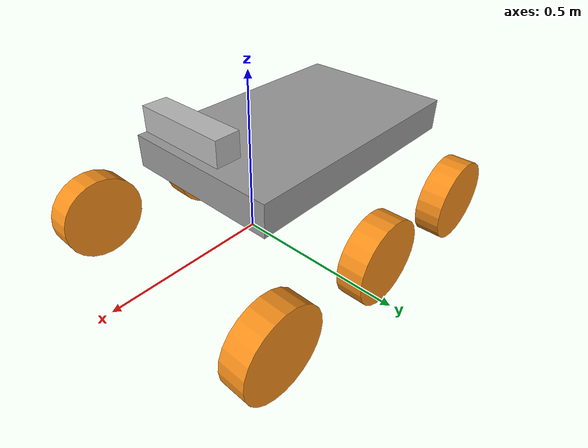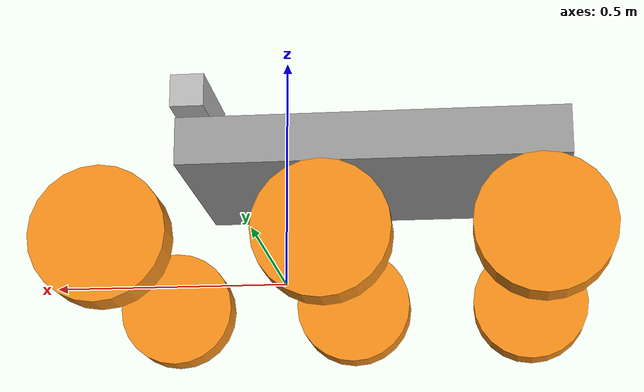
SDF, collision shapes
<?xml version='1.0'?>
<sdf version='1.6'>
  <model name='wombat'>
    <model name='cart_front_steer'>
      <link name='chassis'>
        <pose frame=''>0 0 0.45 0 0 0</pose>
        <inertial>
          <pose frame=''>0.1 0 0 0 0 0</pose>
          <mass>10</mass>
          <inertia>
            <ixx>0.216667</ixx>
            <iyy>0.841667</iyy>
            <izz>1.04167</izz>
            <ixy>0</ixy>
            <ixz>0</ixz>
            <iyz>0</iyz>
          </inertia>
        </inertial>
        <collision name='collision'>
          <geometry>
            <box>
              <size>0.8 0.5 0.1</size>
            </box>
          </geometry>
          <max_contacts>10</max_contacts>
          <surface>
            <contact>
              <ode/>
            </contact>
            <bounce/>
            <friction>
              <torsional>
                <ode/>
              </torsional>
              <ode/>
            </friction>
          </surface>
        </collision>
        <visual name='visual'>
          <geometry>
            <mesh>
              <uri>model://wombat/meshes/wombat_chassis.dae</uri>
            </mesh>
          </geometry>
          <material>
            <script>
              <uri>file://media/materials/scripts/gazebo.material</uri>
              <name>Gazebo/Grey</name>
            </script>
          </material>
        </visual>
        <self_collide>0</self_collide>
        <enable_wind>0</enable_wind>
        <kinematic>0</kinematic>
      </link>
      <link name="susp_front_right">
  +     <pose>0.51 -0.38   0.22  0 0 0</pose>
  +     <inertial>
  +       <mass>0.5</mass>
  +       <inertia>
  +         <ixx>0.000208333333333333</ixx>
  +         <iyy>0.000208333333333333</iyy>
  +         <izz>0.000208333333333333</izz>
  +         <ixy>0</ixy>
  +         <ixz>0</ixz>
  +         <iyz>0</iyz>
  +       </inertia>
  +     </inertial>
  +     <collision name="collision">
  +       <geometry>
  +         <box>
  +           <size>0.05 0.05 0.05</size>
  +         </box>
  +       </geometry>
  +     </collision>
  +     <visual name="visual">
  +       <geometry>
  +         <box>
  +           <size>0.05 0.05 0.05</size>
  +         </box>
  +       </geometry>
  +       <material>
  +         <script>
  +           <uri>file://media/materials/scripts/gazebo.material</uri>
  +           <name>Gazebo/Orange</name>
  +         </script>
  +       </material>
  +     </visual>
  +   </link>
  +   <joint name="susp_front_right_prismatic" type="prismatic">
  +     <parent>chassis</parent>
  +     <child>susp_front_right</child>
  +     <axis>
  +       <xyz>0 0 -1</xyz>
  +       <limit>
  +         <lower>-0.3</lower>
  +         <upper>0.3</upper>
  +       </limit>
  +       <dynamics>
  +         <damping>100</damping>
  +         <spring_stiffness>500</spring_stiffness>
  +         <spring_reference>0.05</spring_reference>
  +       </dynamics>
  +     </axis>
  +     <physics>
  +       <ode>
  +         <implicit_spring_damper>1</implicit_spring_damper>
  +       </ode>
  +     </physics>
  +   </joint>
  +   <link name="wheel_front_right">
  +     <pose>0.51 -0.38  0.22  1.57079632679 0 0</pose>
  +     <inertial>
  +       <mass>0.5</mass>
  +       <inertia>
  +         <ixx>0.00307916666666667</ixx>
  +         <iyy>0.00307916666666667</iyy>
  +         <izz>0.005625</izz>
  +         <ixy>0</ixy>
  +         <ixz>0</ixz>
  +         <iyz>0</iyz>
  +       </inertia>
  +     </inertial>
  +     <collision name="collision">
  +       <geometry>
  +         <cylinder>
  +           <radius>0.133</radius>
  +           <length>0.08</length>
  +         </cylinder>
  +       </geometry>
+       </collision>
+       <visual name="visual">
+         <geometry>
            <mesh>
              <uri>model://wombat/meshes/wombat_wheel.dae</uri>
            </mesh>
+         </geometry>
+         <material>
+           <script>
+             <uri>file://media/materials/scripts/gazebo.material</uri>
+             <name>Gazebo/Orange</name>
+           </script>
+         </material>
+       </visual>
+     </link>
+     <joint name="wheel_front_right_steer_spin" type="revolute">
+       <parent>susp_front_right</parent>
+       <child>wheel_front_right</child>
+       <axis>
+         <xyz>0 0 -1</xyz>
+       </axis>
+     </joint>
+
+     <link name="susp_front_left">
+       <pose>0.51 0.38  0.22  0 0 0</pose>
+       <inertial>
+         <mass>0.5</mass>
+         <inertia>
+           <ixx>0.000208333333333333</ixx>
+           <iyy>0.000208333333333333</iyy>
+           <izz>0.000208333333333333</izz>
+           <ixy>0</ixy>
+           <ixz>0</ixz>
+           <iyz>0</iyz>
+         </inertia>
+       </inertial>
+       <collision name="collision">
+         <geometry>
+           <box>
+             <size>0.05 0.05 0.05</size>
+           </box>
+         </geometry>
+       </collision>
+       <visual name="visual">
+         <geometry>
+           <box>
+             <size>0.05 0.05 0.05</size>
+           </box>
+         </geometry>
+         <material>
+           <script>
+             <uri>file://media/materials/scripts/gazebo.material</uri>
+             <name>Gazebo/Orange</name>
+           </script>
+         </material>
+       </visual>
+     </link>
+     <joint name="susp_front_left_prismatic" type="prismatic">
+       <parent>chassis</parent>
+       <child>susp_front_left</child>
+       <axis>
+         <xyz>0 0 -1</xyz>
+         <limit>
+           <lower>-0.3</lower>
+           <upper>0.3</upper>
+         </limit>
+         <dynamics>
+           <damping>100</damping>
+           <spring_stiffness>500</spring_stiffness>
+           <spring_reference>0.05</spring_reference>
+         </dynamics>
+       </axis>
+       <physics>
+         <ode>
+           <implicit_spring_damper>1</implicit_spring_damper>
+         </ode>
+       </physics>
+     </joint>
+     <link name="wheel_front_left">
+       <pose>0.51 0.38  0.22  -1.5707963267949 0 0</pose>
+       <inertial>
+         <mass>0.5</mass>
+         <inertia>
+           <ixx>0.00307916666666667</ixx>
+           <iyy>0.00307916666666667</iyy>
+           <izz>0.005625</izz>
+           <ixy>0</ixy>
+           <ixz>0</ixz>
+           <iyz>0</iyz>
+         </inertia>
+       </inertial>
+       <collision name="collision">
+         <geometry>
  +         <cylinder>
  +           <radius>0.133</radius>
  +           <length>0.08</length>
  +         </cylinder>
+         </geometry>
+       </collision>
+       <visual name="visual">
+         <geometry>
            <mesh>
              <uri>model://wombat/meshes/wombat_wheel.dae</uri>
            </mesh>
+         </geometry>
+         <material>
+           <script>
+             <uri>file://media/materials/scripts/gazebo.material</uri>
+             <name>Gazebo/Orange</name>
+           </script>
+         </material>
+       </visual>
+     </link>
+     <joint name="wheel_front_left_steer_spin" type="revolute">
+       <parent>susp_front_left</parent>
+       <child>wheel_front_left</child>
+       <axis>
+         <xyz>0 0 1</xyz>
+       </axis>
+     </joint>
+
+     <link name="susp_rear_right">
+       <pose>-0.33 -0.38  0.22  0 0 0</pose>
+       <inertial>
+         <mass>0.5</mass>
+         <inertia>
+           <ixx>0.000208333333333333</ixx>
+           <iyy>0.000208333333333333</iyy>
+           <izz>0.000208333333333333</izz>
+           <ixy>0</ixy>
+           <ixz>0</ixz>
+           <iyz>0</iyz>
+         </inertia>
+       </inertial>
+       <collision name="collision">
+         <geometry>
+           <box>
+             <size>0.05 0.05 0.05</size>
+           </box>
+         </geometry>
+       </collision>
+       <visual name="visual">
+         <geometry>
+           <box>
+             <size>0.05 0.05 0.05</size>
+           </box>
+         </geometry>
+         <material>
+           <script>
+             <uri>file://media/materials/scripts/gazebo.material</uri>
+             <name>Gazebo/Orange</name>
+           </script>
+         </material>
+       </visual>
+     </link>
+     <joint name="susp_rear_right_prismatic" type="prismatic">
+       <parent>chassis</parent>
+       <child>susp_rear_right</child>
+       <axis>
+         <xyz>0 0 -1</xyz>
+         <limit>
+           <lower>-0.3</lower>
+           <upper>0.3</upper>
+         </limit>
+         <dynamics>
+           <damping>100</damping>
+           <spring_stiffness>500</spring_stiffness>
+           <spring_reference>0.05</spring_reference>
+         </dynamics>
+       </axis>
+       <physics>
+         <ode>
+           <implicit_spring_damper>1</implicit_spring_damper>
+         </ode>
+       </physics>
+     </joint>
+     <link name="wheel_rear_right">
+       <pose>-0.33 -0.38  0.22  1.5707963267949 0 0</pose>
+       <inertial>
+         <mass>0.5</mass>
+         <inertia>
+           <ixx>0.00307916666666667</ixx>
+           <iyy>0.00307916666666667</iyy>
+           <izz>0.005625</izz>
+           <ixy>0</ixy>
+           <ixz>0</ixz>
+           <iyz>0</iyz>
+         </inertia>
+       </inertial>
+       <collision name="collision">
+         <geometry>
  +         <cylinder>
  +           <radius>0.133</radius>
  +           <length>0.08</length>
  +         </cylinder>
+         </geometry>
+       </collision>
+       <visual name="visual">
+         <geometry>
            <mesh>
              <uri>model://wombat/meshes/wombat_wheel.dae</uri>
            </mesh>
+         </geometry>
+         <material>
+           <script>
+             <uri>file://media/materials/scripts/gazebo.material</uri>
+             <name>Gazebo/Orange</name>
+           </script>
+         </material>
+       </visual>
+     </link>
+     <joint name="wheel_rear_right_spin" type="revolute">
+       <parent>susp_rear_right</parent>
+       <child>wheel_rear_right</child>
+       <axis>
+         <xyz>0 0 -1</xyz>
+       </axis>
+     </joint>
+
+     <link name="susp_rear_left">
+       <pose>-0.33 0.38  0.22  0 0 0</pose>
+       <inertial>
+         <mass>0.5</mass>
+         <inertia>
+           <ixx>0.000208333333333333</ixx>
+           <iyy>0.000208333333333333</iyy>
+           <izz>0.000208333333333333</izz>
+           <ixy>0</ixy>
+           <ixz>0</ixz>
+           <iyz>0</iyz>
+         </inertia>
+       </inertial>
+       <collision name="collision">
+         <geometry>
+           <box>
+             <size>0.05 0.05 0.05</size>
+           </box>
+         </geometry>
+       </collision>
+       <visual name="visual">
+         <geometry>
+           <box>
+             <size>0.05 0.05 0.05</size>
+           </box>
+         </geometry>
+         <material>
+           <script>
+             <uri>file://media/materials/scripts/gazebo.material</uri>
+             <name>Gazebo/Orange</name>
+           </script>
+         </material>
+       </visual>
+     </link>
+     <joint name="susp_rear_left_prismatic" type="prismatic">
+       <parent>chassis</parent>
+       <child>susp_rear_left</child>
+       <axis>
+         <xyz>0 0 -1</xyz>
+         <limit>
+           <lower>-0.3</lower>
+           <upper>0.3</upper>
+         </limit>
+         <dynamics>
+           <damping>100</damping>
+           <spring_stiffness>500</spring_stiffness>
+           <spring_reference>0.05</spring_reference>
+         </dynamics>
+       </axis>
+       <physics>
+         <ode>
+           <implicit_spring_damper>1</implicit_spring_damper>
+         </ode>
+       </physics>
+     </joint>
+     <link name="wheel_rear_left">
+       <pose>-0.33 0.38  0.22  -1.5707963267949 0 0</pose>
+       <inertial>
+         <mass>0.5</mass>
+         <inertia>
+           <ixx>0.00307916666666667</ixx>
+           <iyy>0.00307916666666667</iyy>
+           <izz>0.005625</izz>
+           <ixy>0</ixy>
+           <ixz>0</ixz>
+           <iyz>0</iyz>
+         </inertia>
+       </inertial>
+       <collision name="collision">
+         <geometry>
  +         <cylinder>
  +           <radius>0.133</radius>
  +           <length>0.08</length>
  +         </cylinder>
+         </geometry>
+       </collision>
+       <visual name="visual">
+         <geometry>
            <mesh>
              <uri>model://wombat/meshes/wombat_wheel.dae</uri>
            </mesh>
+         </geometry>
+         <material>
+           <script>
+             <uri>file://media/materials/scripts/gazebo.material</uri>
+             <name>Gazebo/Orange</name>
+           </script>
+         </material>
+       </visual>
+     </link>
+     <joint name="wheel_rear_left_spin" type="revolute">
+       <parent>susp_rear_left</parent>
+       <child>wheel_rear_left</child>
+       <axis>
+         <xyz>0 0 1</xyz>
+       </axis>
+     </joint>

      <link name="susp_mid_right">
  +     <pose>0.085 -0.38  0.22  0 0 0</pose>
  +     <inertial>
  +       <mass>0.5</mass>
  +       <inertia>
  +         <ixx>0.000208333333333333</ixx>
  +         <iyy>0.000208333333333333</iyy>
  +         <izz>0.000208333333333333</izz>
  +         <ixy>0</ixy>
  +         <ixz>0</ixz>
  +         <iyz>0</iyz>
  +       </inertia>
  +     </inertial>
  +     <collision name="collision">
  +       <geometry>
  +         <box>
  +           <size>0.05 0.05 0.05</size>
  +         </box>
  +       </geometry>
  +     </collision>
  +     <visual name="visual">
  +       <geometry>
  +         <box>
  +           <size>0.05 0.05 0.05</size>
  +         </box>
  +       </geometry>
  +       <material>
  +         <script>
  +           <uri>file://media/materials/scripts/gazebo.material</uri>
  +           <name>Gazebo/Orange</name>
  +         </script>
  +       </material>
  +     </visual>
  +   </link>
  +   <joint name="susp_mid_right_prismatic" type="prismatic">
  +     <parent>chassis</parent>
  +     <child>susp_mid_right</child>
  +     <axis>
  +       <xyz>0 0 -1</xyz>
  +       <limit>
  +         <lower>-0.3</lower>
  +         <upper>0.3</upper>
  +       </limit>
  +       <dynamics>
  +         <damping>100</damping>
  +         <spring_stiffness>500</spring_stiffness>
  +         <spring_reference>0.05</spring_reference>
  +       </dynamics>
  +     </axis>
  +     <physics>
  +       <ode>
  +         <implicit_spring_damper>1</implicit_spring_damper>
  +       </ode>
  +     </physics>
  +   </joint>
  +   <link name="wheel_mid_right">
  +     <pose>0.085 -0.38  0.22  1.5707963267949 0 0</pose>
  +     <inertial>
  +       <mass>0.5</mass>
  +       <inertia>
  +         <ixx>0.00307916666666667</ixx>
  +         <iyy>0.00307916666666667</iyy>
  +         <izz>0.005625</izz>
  +         <ixy>0</ixy>
  +         <ixz>0</ixz>
  +         <iyz>0</iyz>
  +       </inertia>
  +     </inertial>
  +     <collision name="collision">
  +       <geometry>
  +         <cylinder>
  +           <radius>0.133</radius>
  +           <length>0.08</length>
  +         </cylinder>
  +       </geometry>
+       </collision>
+       <visual name="visual">
+         <geometry>
            <mesh>
              <uri>model://wombat/meshes/wombat_wheel.dae</uri>
            </mesh>
+         </geometry>
+         <material>
+           <script>
+             <uri>file://media/materials/scripts/gazebo.material</uri>
+             <name>Gazebo/Orange</name>
+           </script>
+         </material>
+       </visual>
+     </link>
+     <joint name="wheel_mid_right_spin" type="revolute">
+       <parent>susp_mid_right</parent>
+       <child>wheel_mid_right</child>
+       <axis>
+         <xyz>0 0 -1</xyz>
+       </axis>
+     </joint>

      <link name="susp_mid_left">
  +     <pose>0.085 0.38  0.22  0 0 0</pose>
  +     <inertial>
  +       <mass>0.5</mass>
  +       <inertia>
  +         <ixx>0.000208333333333333</ixx>
  +         <iyy>0.000208333333333333</iyy>
  +         <izz>0.000208333333333333</izz>
  +         <ixy>0</ixy>
  +         <ixz>0</ixz>
  +         <iyz>0</iyz>
  +       </inertia>
  +     </inertial>
  +     <collision name="collision">
  +       <geometry>
  +         <box>
  +           <size>0.05 0.05 0.05</size>
  +         </box>
  +       </geometry>
  +     </collision>
  +     <visual name="visual">
  +       <geometry>
  +         <box>
  +           <size>0.05 0.05 0.05</size>
  +         </box>
  +       </geometry>
  +       <material>
  +         <script>
  +           <uri>file://media/materials/scripts/gazebo.material</uri>
  +           <name>Gazebo/Orange</name>
  +         </script>
  +       </material>
  +     </visual>
  +   </link>
  +   <joint name="susp_mid_left_prismatic" type="prismatic">
  +     <parent>chassis</parent>
  +     <child>susp_mid_left</child>
  +     <axis>
  +       <xyz>0 0 -1</xyz>
  +       <limit>
  +         <lower>-0.3</lower>
  +         <upper>0.3</upper>
  +       </limit>
  +       <dynamics>
  +         <damping>100</damping>
  +         <spring_stiffness>500</spring_stiffness>
  +         <spring_reference>0.05</spring_reference>
  +       </dynamics>
  +     </axis>
  +     <physics>
  +       <ode>
  +         <implicit_spring_damper>1</implicit_spring_damper>
  +       </ode>
  +     </physics>
  +   </joint>
  +   <link name="wheel_mid_left">
  +     <pose>0.085 0.38   0.22  -1.5707963267949 0 0</pose>
  +     <inertial>
  +       <mass>0.5</mass>
  +       <inertia>
  +         <ixx>0.00307916666666667</ixx>
  +         <iyy>0.00307916666666667</iyy>
  +         <izz>0.005625</izz>
  +         <ixy>0</ixy>
  +         <ixz>0</ixz>
  +         <iyz>0</iyz>
  +       </inertia>
  +     </inertial>
  +     <collision name="collision">
  +       <geometry>
  +         <cylinder>
  +           <radius>0.133</radius>
  +           <length>0.08</length>
  +         </cylinder>
  +       </geometry>
+       </collision>
+       <visual name="visual">
+         <geometry>
            <mesh>
              <uri>model://wombat/meshes/wombat_wheel.dae</uri>
            </mesh>
+         </geometry>
+         <material>
+           <script>
+             <uri>file://media/materials/scripts/gazebo.material</uri>
+             <name>Gazebo/Orange</name>
+           </script>
+         </material>
+       </visual>
+     </link>
+     <joint name="wheel_mid_left_spin" type="revolute">
+       <parent>susp_mid_left</parent>
+       <child>wheel_mid_left</child>
+       <axis>
+         <xyz>0 0 1</xyz>
+       </axis>
+     </joint>

      <pose frame=''>-0.2 0 -0.2 -0 -0 -0</pose>
      <plugin name="skid_steer_drive_controller_custom" filename="libgazebo_ros_skid_steer_drive_custom.so">
        <updateRate>0.0</updateRate>
        <robotNamespace>/</robotNamespace>
        <leftFrontJoint>wheel_front_left_steer_spin</leftFrontJoint>
        <rightFrontJoint>wheel_front_right_steer_spin</rightFrontJoint>
        <leftRearJoint>wheel_rear_left_spin</leftRearJoint>
        <rightRearJoint>wheel_rear_right_spin</rightRearJoint>
        <leftMidJoint>wheel_mid_left_spin</leftMidJoint>
        <rightMidJoint>wheel_mid_right_spin</rightMidJoint>
        <wheelSeparation>0.8</wheelSeparation>
        <wheelDiameter>0.27</wheelDiameter>
        <robotBaseFrame>base_footprint</robotBaseFrame>
        <torque>10</torque>
        <commandTopic>cmd_vel</commandTopic>
        <odometryTopic>odom</odometryTopic>
        <odometryFrame>odom</odometryFrame>
        <covariance_x>0.000100</covariance_x>
        <covariance_y>0.000100</covariance_y>
        <covariance_yaw>0.000100</covariance_yaw>
        <broadcastTF>1</broadcastTF>
      </plugin>
    </model>
    <model name='kinect'>
    <plugin name="name_gps" filename="libhector_gazebo_ros_gps.so">
      <alwayson>1</alwayson>
      <updaterate>10.0</updaterate>
      <bodyname>gps_link</bodyname>
      <gaussianNoise>0.3 0.3 0.3</gaussianNoise>
      <topicname>fix</topicname>
      <velocitytopicname>fixvelocity</velocitytopicname>
      <drift>0.0 0.0 0.0</drift>
      <velocitydrift>0 0 0</velocitydrift>
      <velocitygaussiannoise>1 1 1</velocitygaussiannoise>
    </plugin>
      <pose frame=''>0.2 0 0.4 0 0 0</pose>
      <link name='camera_link'>
        <inertial>
          <mass>0.1</mass>
          <pose frame=''>0 0 0 0 0 0</pose>
          <inertia>
            <ixx>1</ixx>
            <ixy>0</ixy>
            <ixz>0</ixz>
            <iyy>1</iyy>
            <iyz>0</iyz>
            <izz>1</izz>
          </inertia>
        </inertial>
        <collision name='collision'>
          <geometry>
            <box>
              <size>0.073 0.276 0.072</size>
            </box>
          </geometry>
          <max_contacts>10</max_contacts>
          <surface>
            <contact>
              <ode/>
            </contact>
            <bounce/>
            <friction>
              <torsional>
                <ode/>
              </torsional>
              <ode/>
            </friction>
          </surface>
        </collision>
        <visual name='visual'>
          <geometry>
            <mesh>
              <uri>model://kinect/meshes/kinect.dae</uri>
            </mesh>
          </geometry>
        </visual>
        <gravity>1</gravity>
        <sensor name='imu_sensor' type='imu'>
          <always_on>1</always_on>
          <update_rate>100</update_rate>
          <visualize>1</visualize>
          <topic>__default_topic__</topic>
          <plugin name='imu_plugin' filename='libgazebo_ros_imu_sensor.so'>
            <topicName>imu</topicName>
            <bodyName>imu_link</bodyName>
            <updateRateHZ>10.0</updateRateHZ>
            <gaussianNoise>0.0</gaussianNoise>
            <xyzOffset>0 0 0</xyzOffset>
            <rpyOffset>0 0 0</rpyOffset>
            <frameName>imu_link</frameName>
          </plugin>
          <pose frame=''>0 0 0 0 -0 0</pose>
          <imu/>
        </sensor>

        <sensor name='camera' type='depth'>
          <plugin name='camera_plugin' filename='libgazebo_ros_openni_kinect.so'>
            <baseline>0.2</baseline>
            <alwaysOn>1</alwaysOn>
            <updateRate>0.0</updateRate>
            <cameraName>camera_ir</cameraName>
            <imageTopicName>/camera/color/image_raw</imageTopicName>
            <cameraInfoTopicName>/camera/color/camera_info</cameraInfoTopicName>
            <depthImageTopicName>/camera/depth/image_raw</depthImageTopicName>
            <depthImageCameraInfoTopicName>/camera/depth/camera_info</depthImageCameraInfoTopicName>
            <pointCloudTopicName>/camera/depth/points</pointCloudTopicName>
            <frameName>camera_link</frameName>
            <pointCloudCutoff>0.5</pointCloudCutoff>
            <pointCloudCutoffMax>5.0</pointCloudCutoffMax>
            <distortionK1>0.1</distortionK1>
            <distortionK2>0.1</distortionK2>
            <distortionK3>0.1</distortionK3>
            <distortionT1>0.1</distortionT1>
            <distortionT2>0.1</distortionT2>
            <CxPrime>0</CxPrime>
            <Cx>0</Cx>
            <Cy>0</Cy>
            <focalLength>0</focalLength>
            <hackBaseline>0</hackBaseline>
          </plugin>
          <update_rate>20</update_rate>
          <camera name='__default__'>
            <horizontal_fov>1.0472</horizontal_fov>
            <image>
              <width>100</width>
              <height>75</height>
              <format>R8G8B8</format>
            </image>
            <clip>
              <near>0.05</near>
              <far>10</far>
            </clip>
          </camera>
        </sensor>
        <self_collide>0</self_collide>
        <enable_wind>0</enable_wind>
        <kinematic>0</kinematic>
      </link>
    </model>
    <joint name='chassis_JOINT_1' type='fixed'>
      <parent>cart_front_steer::chassis</parent>
      <child>kinect::camera_link</child>
      <pose frame=''>-0.38 0 0.2 0 0 0</pose>
      <physics>
        <ode>
          <limit>
            <cfm>0</cfm>
            <erp>0.2</erp>
          </limit>
          <suspension>
            <cfm>0</cfm>
            <erp>0.2</erp>
          </suspension>
        </ode>
      </physics>
    </joint>
    <static>0</static>
    <allow_auto_disable>0</allow_auto_disable>
  </model>
</sdf>
